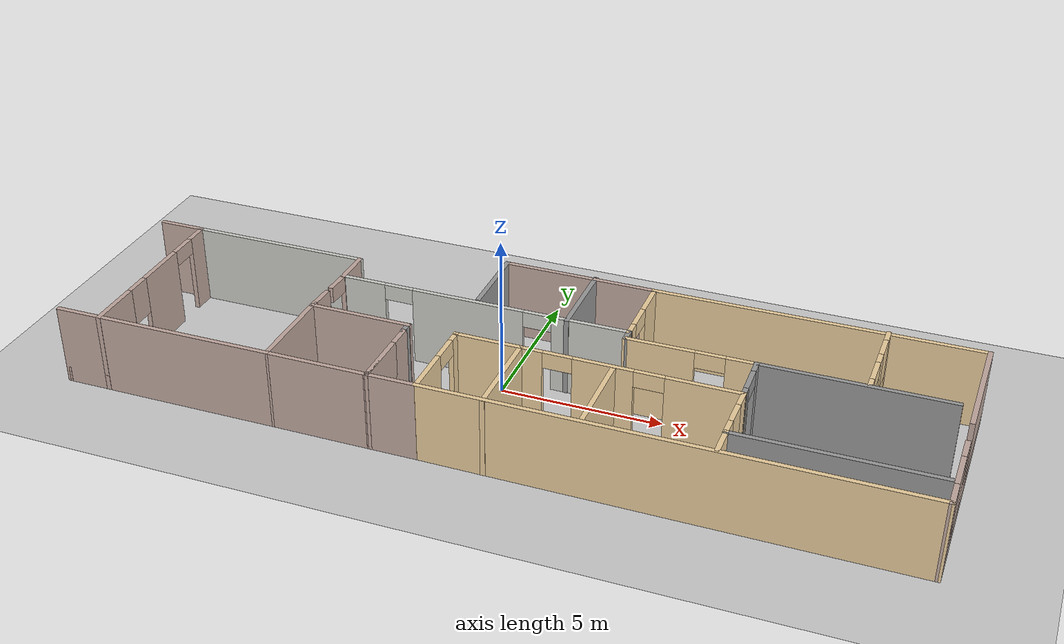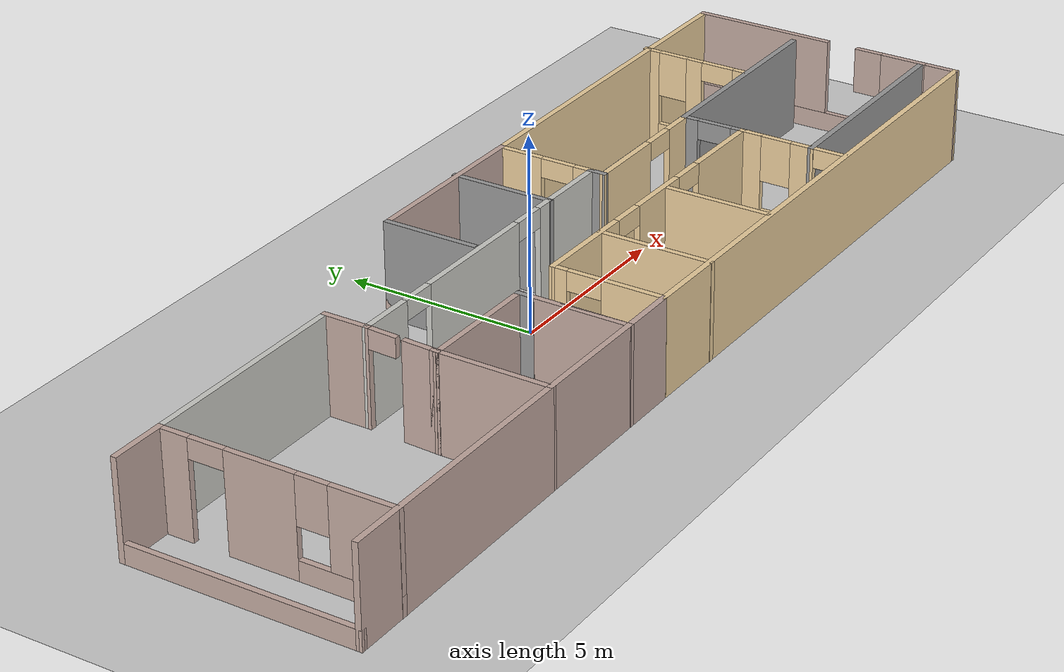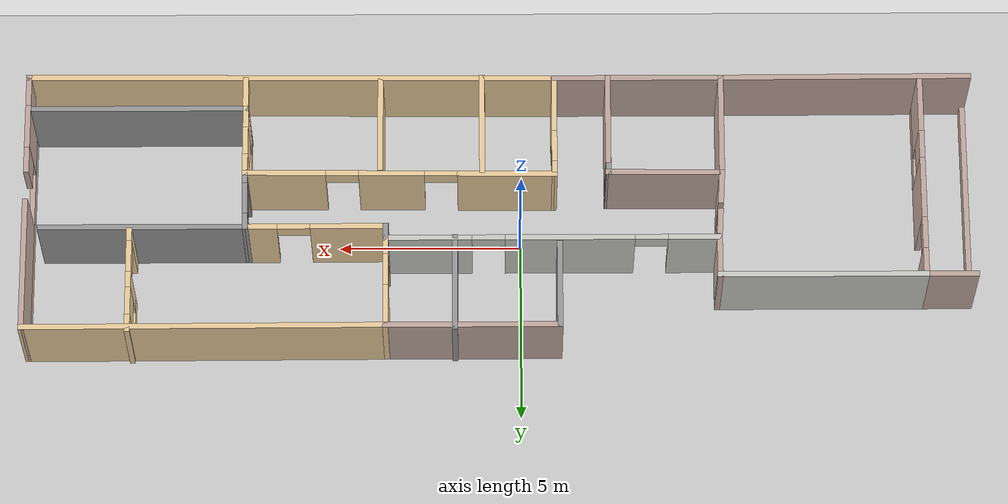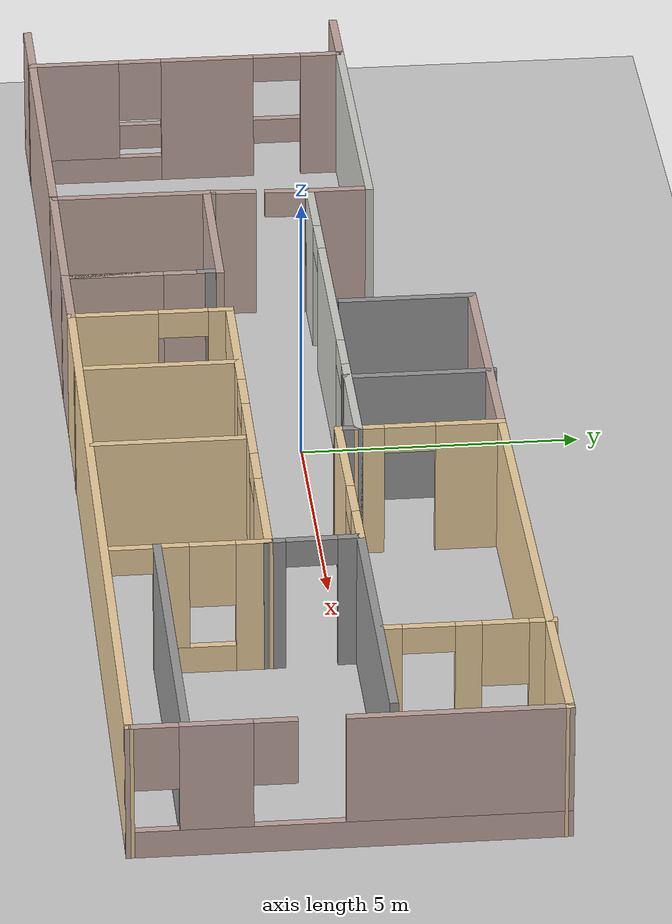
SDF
<sdf version="1.7">
 <world name="default">
  <light name="sun" type="directional">
   <pose>0 0 10 0 -0 0</pose>
   <diffuse>0.8 0.8 0.8 1</diffuse>
   <specular>0.2 0.2 0.2 1</specular>
   <attenuation>
    <range>1000</range>
    <constant>0.9</constant>
    <linear>0.01</linear>
    <quadratic>0.001</quadratic>
   </attenuation>
   <direction>-0.5 0.1 -0.9</direction>
   <spot><inner_angle>0</inner_angle><outer_angle>0</outer_angle><falloff>0</falloff></spot>
  </light>
  <model name="ground_plane">
   <static>1</static>
   <link name="link">
    <collision name="collision">
     <geometry><plane><normal>0 0 1</normal><size>100 100</size></plane></geometry>
     <surface>
      <contact><collide_bitmask>65535</collide_bitmask></contact>
      <friction><ode><mu>100</mu><mu2>50</mu2></ode></friction>
     </surface>
    </collision>
    <visual name="visual">
     <cast_shadows>0</cast_shadows>
     <geometry><plane><normal>0 0 1</normal><size>100 100</size></plane></geometry>
     <material>
      <script><uri>file://media/materials/scripts/gazebo.material</uri><name>Gazebo/Grey</name></script>
     </material>
    </visual>
   </link>
  </model>
  <gravity>0 0 -9.8</gravity>
  <magnetic_field>6e-06 2.3e-05 -4.2e-05</magnetic_field>
  <atmosphere type="adiabatic"/>
  <physics type="ode">
   <max_step_size>0.001</max_step_size>
   <real_time_factor>1</real_time_factor>
   <real_time_update_rate>1000</real_time_update_rate>
  </physics>
  <scene><ambient>0.4 0.4 0.4 1</ambient><background>0.7 0.7 0.7 1</background><shadows>1</shadows></scene>
  <audio><device>default</device></audio>
  <spherical_coordinates>
   <surface_model>EARTH_WGS84</surface_model>
   <latitude_deg>0</latitude_deg>
   <longitude_deg>0</longitude_deg>
   <elevation>0</elevation>
   <heading_deg>0</heading_deg>
  </spherical_coordinates>
  <model name="world">
   <pose>0.585105 -0.429525 0 0 -0 0</pose>
   <link name="Wall_1">
    <collision name="Wall_1_Collision">
     <geometry><box><size>1.25 0.15 2.5</size></box></geometry>
     <pose>0 0 1.25 0 -0 0</pose>
    </collision>
    <visual name="Wall_1_Visual">
     <pose>0 0 1.25 0 -0 0</pose>
     <geometry><box><size>1.25 0.15 2.5</size></box></geometry>
     <material>
      <script><uri>file://media/materials/scripts/gazebo.material</uri><name>Gazebo/Grey</name></script>
      <ambient>0.760784 0.662745 0.627451 1</ambient>
     </material>
     <meta><layer>0</layer></meta>
    </visual>
    <pose>-6.00121 1.63401 0 0 -0 1.5708</pose>
   </link>
   <link name="Wall_11">
    <pose>-2.99508 -2.41136 0 0 -0 -1.57579</pose>
    <visual name="Wall_11_Visual_0">
     <pose>0 0 1.25 0 -0 0</pose>
     <geometry><box><size>2.60696 0.15 2.5</size></box></geometry>
     <material>
      <script><uri>file://media/materials/scripts/gazebo.material</uri><name>Gazebo/Grey</name></script>
      <ambient>0.760784 0.662745 0.627451 1</ambient>
     </material>
     <meta><layer>0</layer></meta>
    </visual>
    <collision name="Wall_11_Collision_0">
     <geometry><box><size>2.60696 0.15 2.5</size></box></geometry>
     <pose>0 0 1.25 0 -0 0</pose>
    </collision>
    <visual name="Wall_11_Visual_1">
     <pose>0.37714 0 1.25 0 -0 0</pose>
     <geometry><box><size>1.85268 0.15 2.5</size></box></geometry>
     <material>
      <script><uri>file://media/materials/scripts/gazebo.material</uri><name>Gazebo/Grey</name></script>
      <ambient>0.760784 0.662745 0.627451 1</ambient>
     </material>
     <meta><layer>0</layer></meta>
    </visual>
    <collision name="Wall_11_Collision_1">
     <geometry><box><size>1.85268 0.15 2.5</size></box></geometry>
     <pose>0.37714 0 1.25 0 -0 0</pose>
    </collision>
   </link>
   <link name="Wall_12">
    <collision name="Wall_12_Collision">
     <geometry><box><size>1.61885 0.15 2.5</size></box></geometry>
     <pose>0 0 1.25 0 -0 0</pose>
    </collision>
    <visual name="Wall_12_Visual">
     <pose>0 0 1.25 0 -0 0</pose>
     <geometry><box><size>1.61885 0.15 2.5</size></box></geometry>
     <material>
      <script><uri>file://media/materials/scripts/gazebo.material</uri><name>Gazebo/Grey</name></script>
      <ambient>0.760784 0.662745 0.627451 1</ambient>
     </material>
     <meta><layer>0</layer></meta>
    </visual>
    <pose>-2.26679 -3.63691 0 0 -0 0.003583</pose>
   </link>
   <link name="Wall_13">
    <pose>-1.51914 -2.20928 0 0 -0 1.5708</pose>
    <visual name="Wall_13_Visual_0">
     <pose>-0.68151 0 1.25 0 -0 0</pose>
     <geometry><box><size>1.63698 0.15 2.5</size></box></geometry>
     <material>
      <script><uri>file://media/materials/scripts/gazebo.material</uri><name>Gazebo/Grey</name></script>
      <ambient>0.921569 0.807843 0.615686 1</ambient>
     </material>
     <meta><layer>0</layer></meta>
    </visual>
    <collision name="Wall_13_Collision_0">
     <geometry><box><size>1.63698 0.15 2.5</size></box></geometry>
     <pose>-0.68151 0 1.25 0 -0 0</pose>
    </collision>
    <visual name="Wall_13_Visual_1">
     <pose>1.26849 0 1.25 0 -0 0</pose>
     <geometry><box><size>0.46302 0.15 2.5</size></box></geometry>
     <material>
      <script><uri>file://media/materials/scripts/gazebo.material</uri><name>Gazebo/Grey</name></script>
      <ambient>0.921569 0.807843 0.615686 1</ambient>
     </material>
     <meta><layer>0</layer></meta>
    </visual>
    <collision name="Wall_13_Collision_1">
     <geometry><box><size>0.46302 0.15 2.5</size></box></geometry>
     <pose>1.26849 0 1.25 0 -0 0</pose>
    </collision>
    <visual name="Wall_13_Visual_2">
     <pose>0.58698 0 2.25 0 -0 0</pose>
     <geometry><box><size>0.9 0.15 0.5</size></box></geometry>
     <material>
      <script><uri>file://media/materials/scripts/gazebo.material</uri><name>Gazebo/Grey</name></script>
      <ambient>0.921569 0.807843 0.615686 1</ambient>
     </material>
     <meta><layer>0</layer></meta>
    </visual>
    <collision name="Wall_13_Collision_2">
     <geometry><box><size>0.9 0.15 0.5</size></box></geometry>
     <pose>0.58698 0 2.25 0 -0 0</pose>
    </collision>
   </link>
   <link name="Wall_14">
    <pose>2.72363 -0.813929 0 0 -0 -0.006988</pose>
    <visual name="Wall_14_Visual_0">
     <pose>-2.94797 0 1.25 0 -0 0</pose>
     <geometry><box><size>2.73982 0.15 2.5</size></box></geometry>
     <material>
      <script><uri>file://media/materials/scripts/gazebo.material</uri><name>Gazebo/Grey</name></script>
      <ambient>0.921569 0.807843 0.615686 1</ambient>
     </material>
     <meta><layer>0</layer></meta>
    </visual>
    <collision name="Wall_14_Collision_0">
     <geometry><box><size>2.73982 0.15 2.5</size></box></geometry>
     <pose>-2.94797 0 1.25 0 -0 0</pose>
    </collision>
    <visual name="Wall_14_Visual_1">
     <pose>0.224347 0 1.25 0 -0 0</pose>
     <geometry><box><size>1.8048 0.15 2.5</size></box></geometry>
     <material>
      <script><uri>file://media/materials/scripts/gazebo.material</uri><name>Gazebo/Grey</name></script>
      <ambient>0.921569 0.807843 0.615686 1</ambient>
     </material>
     <meta><layer>0</layer></meta>
    </visual>
    <collision name="Wall_14_Collision_1">
     <geometry><box><size>1.8048 0.15 2.5</size></box></geometry>
     <pose>0.224347 0 1.25 0 -0 0</pose>
    </collision>
    <visual name="Wall_14_Visual_2">
     <pose>3.17231 0 1.25 0 -0 0</pose>
     <geometry><box><size>2.29113 0.15 2.5</size></box></geometry>
     <material>
      <script><uri>file://media/materials/scripts/gazebo.material</uri><name>Gazebo/Grey</name></script>
      <ambient>0.921569 0.807843 0.615686 1</ambient>
     </material>
     <meta><layer>0</layer></meta>
    </visual>
    <collision name="Wall_14_Collision_2">
     <geometry><box><size>2.29113 0.15 2.5</size></box></geometry>
     <pose>3.17231 0 1.25 0 -0 0</pose>
    </collision>
    <visual name="Wall_14_Visual_3">
     <pose>-1.12806 0 2.25 0 -0 0</pose>
     <geometry><box><size>0.9 0.15 0.5</size></box></geometry>
     <material>
      <script><uri>file://media/materials/scripts/gazebo.material</uri><name>Gazebo/Grey</name></script>
      <ambient>0.921569 0.807843 0.615686 1</ambient>
     </material>
     <meta><layer>0</layer></meta>
    </visual>
    <collision name="Wall_14_Collision_3">
     <geometry><box><size>0.9 0.15 0.5</size></box></geometry>
     <pose>-1.12806 0 2.25 0 -0 0</pose>
    </collision>
    <visual name="Wall_14_Visual_4">
     <pose>1.57675 0 2.25 0 -0 0</pose>
     <geometry><box><size>0.9 0.15 0.5</size></box></geometry>
     <material>
      <script><uri>file://media/materials/scripts/gazebo.material</uri><name>Gazebo/Grey</name></script>
      <ambient>0.921569 0.807843 0.615686 1</ambient>
     </material>
     <meta><layer>0</layer></meta>
    </visual>
    <collision name="Wall_14_Collision_4">
     <geometry><box><size>0.9 0.15 0.5</size></box></geometry>
     <pose>1.57675 0 2.25 0 -0 0</pose>
    </collision>
   </link>
   <link name="Wall_2">
    <collision name="Wall_2_Collision">
     <geometry><box><size>5.75 0.15 2.5</size></box></geometry>
     <pose>0 0 1.25 0 -0 0</pose>
    </collision>
    <visual name="Wall_2_Visual">
     <pose>0 0 1.25 0 -0 0</pose>
     <geometry><box><size>5.75 0.15 2.5</size></box></geometry>
     <material>
      <script><uri>file://media/materials/scripts/gazebo.material</uri><name>Gazebo/CeilingTiled</name></script>
      <ambient>0.760784 0.662745 0.627451 1</ambient>
     </material>
     <meta><layer>0</layer></meta>
    </visual>
    <pose>-8.80121 2.18401 0 0 -0 3.14159</pose>
   </link>
   <link name="Wall_20">
    <pose>-1.45121 1.08401 0 0 -0 0</pose>
    <visual name="Wall_20_Visual_0">
     <pose>-3.88533 0 1.25 0 -0 0</pose>
     <geometry><box><size>1.47935 0.15 2.5</size></box></geometry>
     <material>
      <script><uri>file://media/materials/scripts/gazebo.material</uri><name>Gazebo/CeilingTiled</name></script>
      <ambient>0.760784 0.662745 0.627451 1</ambient>
     </material>
     <meta><layer>0</layer></meta>
    </visual>
    <collision name="Wall_20_Collision_0">
     <geometry><box><size>1.47935 0.15 2.5</size></box></geometry>
     <pose>-3.88533 0 1.25 0 -0 0</pose>
    </collision>
    <visual name="Wall_20_Visual_1">
     <pose>-0.475175 0 1.25 0 -0 0</pose>
     <geometry><box><size>3.54095 0.15 2.5</size></box></geometry>
     <material>
      <script><uri>file://media/materials/scripts/gazebo.material</uri><name>Gazebo/CeilingTiled</name></script>
      <ambient>0.760784 0.662745 0.627451 1</ambient>
     </material>
     <meta><layer>0</layer></meta>
    </visual>
    <collision name="Wall_20_Collision_1">
     <geometry><box><size>3.54095 0.15 2.5</size></box></geometry>
     <pose>-0.475175 0 1.25 0 -0 0</pose>
    </collision>
    <visual name="Wall_20_Visual_2">
     <pose>3.41015 0 1.25 0 -0 0</pose>
     <geometry><box><size>2.4297 0.15 2.5</size></box></geometry>
     <material>
      <script><uri>file://media/materials/scripts/gazebo.material</uri><name>Gazebo/CeilingTiled</name></script>
      <ambient>0.760784 0.662745 0.627451 1</ambient>
     </material>
     <meta><layer>0</layer></meta>
    </visual>
    <collision name="Wall_20_Collision_2">
     <geometry><box><size>2.4297 0.15 2.5</size></box></geometry>
     <pose>3.41015 0 1.25 0 -0 0</pose>
    </collision>
    <visual name="Wall_20_Visual_3">
     <pose>-2.69565 0 2.25 0 -0 0</pose>
     <geometry><box><size>0.9 0.15 0.5</size></box></geometry>
     <material>
      <script><uri>file://media/materials/scripts/gazebo.material</uri><name>Gazebo/CeilingTiled</name></script>
      <ambient>0.760784 0.662745 0.627451 1</ambient>
     </material>
     <meta><layer>0</layer></meta>
    </visual>
    <collision name="Wall_20_Collision_3">
     <geometry><box><size>0.9 0.15 0.5</size></box></geometry>
     <pose>-2.69565 0 2.25 0 -0 0</pose>
    </collision>
    <visual name="Wall_20_Visual_4">
     <pose>1.7453 0 2.25 0 -0 0</pose>
     <geometry><box><size>0.9 0.15 0.5</size></box></geometry>
     <material>
      <script><uri>file://media/materials/scripts/gazebo.material</uri><name>Gazebo/CeilingTiled</name></script>
      <ambient>0.760784 0.662745 0.627451 1</ambient>
     </material>
     <meta><layer>0</layer></meta>
    </visual>
    <collision name="Wall_20_Collision_4">
     <geometry><box><size>0.9 0.15 0.5</size></box></geometry>
     <pose>1.7453 0 2.25 0 -0 0</pose>
    </collision>
   </link>
   <link name="Wall_21">
    <collision name="Wall_21_Collision">
     <geometry><box><size>0.5 0.15 2.5</size></box></geometry>
     <pose>0 0 1.25 0 -0 0</pose>
    </collision>
    <visual name="Wall_21_Visual">
     <pose>0 0 1.25 0 -0 0</pose>
     <geometry><box><size>0.5 0.15 2.5</size></box></geometry>
     <material>
      <script><uri>file://media/materials/scripts/gazebo.material</uri><name>Gazebo/Grey</name></script>
      <ambient>1 1 1 1</ambient>
     </material>
     <meta><layer>0</layer></meta>
    </visual>
    <pose>3.09879 0.909009 0 0 -0 -1.5708</pose>
   </link>
   <link name="Wall_22">
    <pose>5.01654 0.740621 0 0 -0 0.003448</pose>
    <visual name="Wall_22_Visual_0">
     <pose>-0.924052 0 1.25 0 -0 0</pose>
     <geometry><box><size>2.13742 0.15 2.5</size></box></geometry>
     <material>
      <script><uri>file://media/materials/scripts/gazebo.material</uri><name>Gazebo/Grey</name></script>
      <ambient>0.921569 0.807843 0.615686 1</ambient>
     </material>
     <meta><layer>0</layer></meta>
    </visual>
    <collision name="Wall_22_Collision_0">
     <geometry><box><size>2.13742 0.15 2.5</size></box></geometry>
     <pose>-0.924052 0 1.25 0 -0 0</pose>
    </collision>
    <visual name="Wall_22_Visual_1">
     <pose>1.51871 0 1.25 0 -0 0</pose>
     <geometry><box><size>0.948104 0.15 2.5</size></box></geometry>
     <material>
      <script><uri>file://media/materials/scripts/gazebo.material</uri><name>Gazebo/Grey</name></script>
      <ambient>0.921569 0.807843 0.615686 1</ambient>
     </material>
     <meta><layer>0</layer></meta>
    </visual>
    <collision name="Wall_22_Collision_1">
     <geometry><box><size>0.948104 0.15 2.5</size></box></geometry>
     <pose>1.51871 0 1.25 0 -0 0</pose>
    </collision>
    <visual name="Wall_22_Visual_2">
     <pose>0.594657 0 2.25 0 -0 0</pose>
     <geometry><box><size>0.9 0.15 0.5</size></box></geometry>
     <material>
      <script><uri>file://media/materials/scripts/gazebo.material</uri><name>Gazebo/Grey</name></script>
      <ambient>0.921569 0.807843 0.615686 1</ambient>
     </material>
     <meta><layer>0</layer></meta>
    </visual>
    <collision name="Wall_22_Collision_2">
     <geometry><box><size>0.9 0.15 0.5</size></box></geometry>
     <pose>0.594657 0 2.25 0 -0 0</pose>
    </collision>
   </link>
   <link name="Wall_23">
    <pose>6.95035 -0.054785 0 0 -0 -1.55078</pose>
    <visual name="Wall_23_Visual_0">
     <pose>-0.640936 0 1.25 0 -0 0</pose>
     <geometry><box><size>0.472489 0.15 2.5</size></box></geometry>
     <material>
      <script><uri>file://media/materials/scripts/gazebo.material</uri><name>Gazebo/Grey</name></script>
      <ambient>1 1 1 1</ambient>
     </material>
     <meta><layer>0</layer></meta>
    </visual>
    <collision name="Wall_23_Collision_0">
     <geometry><box><size>0.472489 0.15 2.5</size></box></geometry>
     <pose>-0.640936 0 1.25 0 -0 0</pose>
    </collision>
    <visual name="Wall_23_Visual_1">
     <pose>0.686244 0 1.25 0 -0 0</pose>
     <geometry><box><size>0.381871 0.15 2.5</size></box></geometry>
     <material>
      <script><uri>file://media/materials/scripts/gazebo.material</uri><name>Gazebo/Grey</name></script>
      <ambient>1 1 1 1</ambient>
     </material>
     <meta><layer>0</layer></meta>
    </visual>
    <collision name="Wall_23_Collision_1">
     <geometry><box><size>0.381871 0.15 2.5</size></box></geometry>
     <pose>0.686244 0 1.25 0 -0 0</pose>
    </collision>
    <visual name="Wall_23_Visual_2">
     <pose>0.045309 0 2.25 0 -0 0</pose>
     <geometry><box><size>0.9 0.15 0.5</size></box></geometry>
     <material>
      <script><uri>file://media/materials/scripts/gazebo.material</uri><name>Gazebo/Grey</name></script>
      <ambient>1 1 1 1</ambient>
     </material>
     <meta><layer>0</layer></meta>
    </visual>
    <collision name="Wall_23_Collision_2">
     <geometry><box><size>0.9 0.15 0.5</size></box></geometry>
     <pose>0.045309 0 2.25 0 -0 0</pose>
    </collision>
   </link>
   <link name="Wall_26">
    <collision name="Wall_26_Collision">
     <geometry><box><size>3.25 0.15 2.5</size></box></geometry>
     <pose>0 0 1.25 0 -0 0</pose>
    </collision>
    <visual name="Wall_26_Visual">
     <pose>0 0 1.25 0 -0 0</pose>
     <geometry><box><size>3.25 0.15 2.5</size></box></geometry>
     <material>
      <script><uri>file://media/materials/scripts/gazebo.material</uri><name>Gazebo/Grey</name></script>
      <ambient>0.760784 0.662745 0.627451 1</ambient>
     </material>
     <meta><layer>0</layer></meta>
    </visual>
    <pose>-4.55121 -3.63954 0 0 -0 0</pose>
   </link>
   <link name="Wall_28">
    <collision name="Wall_28_Collision">
     <geometry><box><size>14.6337 0.15 2.5</size></box></geometry>
     <pose>0 0 1.25 0 -0 0</pose>
    </collision>
    <visual name="Wall_28_Visual">
     <pose>0 0 1.25 0 -0 0</pose>
     <geometry><box><size>14.6337 0.15 2.5</size></box></geometry>
     <material>
      <script><uri>file://media/materials/scripts/gazebo.material</uri><name>Gazebo/Grey</name></script>
      <ambient>0.921569 0.807843 0.615686 1</ambient>
     </material>
     <meta><layer>0</layer></meta>
    </visual>
    <pose>5.70939 -3.66734 0 0 -0 -0.004566</pose>
   </link>
   <link name="Wall_29">
    <pose>12.9512 -0.025403 0 0 -0 1.5708</pose>
    <visual name="Wall_29_Visual_0">
     <pose>-3.69753 0 1.25 0 -0 0</pose>
     <geometry><box><size>0.104934 0.15 2.5</size></box></geometry>
     <material>
      <script><uri>file://media/materials/scripts/gazebo.material</uri><name>Gazebo/Grey</name></script>
      <ambient>0.760784 0.662745 0.627451 1</ambient>
     </material>
     <meta><layer>0</layer></meta>
    </visual>
    <collision name="Wall_29_Collision_0">
     <geometry><box><size>0.104934 0.15 2.5</size></box></geometry>
     <pose>-3.69753 0 1.25 0 -0 0</pose>
    </collision>
    <visual name="Wall_29_Visual_1">
     <pose>0.052467 0 0.25 0 -0 0</pose>
     <geometry><box><size>7.39507 0.15 0.5</size></box></geometry>
     <material>
      <script><uri>file://media/materials/scripts/gazebo.material</uri><name>Gazebo/Grey</name></script>
      <ambient>0.760784 0.662745 0.627451 1</ambient>
     </material>
     <meta><layer>0</layer></meta>
    </visual>
    <collision name="Wall_29_Collision_1">
     <geometry><box><size>7.39507 0.15 0.5</size></box></geometry>
     <pose>0.052467 0 0.25 0 -0 0</pose>
    </collision>
    <visual name="Wall_29_Visual_2">
     <pose>-2.22551 0 1.5 0 -0 0</pose>
     <geometry><box><size>1.2391 0.15 2</size></box></geometry>
     <material>
      <script><uri>file://media/materials/scripts/gazebo.material</uri><name>Gazebo/Grey</name></script>
      <ambient>0.760784 0.662745 0.627451 1</ambient>
     </material>
     <meta><layer>0</layer></meta>
    </visual>
    <collision name="Wall_29_Collision_2">
     <geometry><box><size>1.2391 0.15 2</size></box></geometry>
     <pose>-2.22551 0 1.5 0 -0 0</pose>
    </collision>
    <visual name="Wall_29_Visual_3">
     <pose>1.84442 0 1.5 0 -0 0</pose>
     <geometry><box><size>3.81116 0.15 2</size></box></geometry>
     <material>
      <script><uri>file://media/materials/scripts/gazebo.material</uri><name>Gazebo/Grey</name></script>
      <ambient>0.760784 0.662745 0.627451 1</ambient>
     </material>
     <meta><layer>0</layer></meta>
    </visual>
    <collision name="Wall_29_Collision_3">
     <geometry><box><size>3.81116 0.15 2</size></box></geometry>
     <pose>1.84442 0 1.5 0 -0 0</pose>
    </collision>
    <visual name="Wall_29_Visual_4">
     <pose>-3.24507 0 1.9 0 -0 0</pose>
     <geometry><box><size>0.8 0.15 1.2</size></box></geometry>
     <material>
      <script><uri>file://media/materials/scripts/gazebo.material</uri><name>Gazebo/Grey</name></script>
      <ambient>0.760784 0.662745 0.627451 1</ambient>
     </material>
     <meta><layer>0</layer></meta>
    </visual>
    <collision name="Wall_29_Collision_4">
     <geometry><box><size>0.8 0.15 1.2</size></box></geometry>
     <pose>-3.24507 0 1.9 0 -0 0</pose>
    </collision>
    <visual name="Wall_29_Visual_5">
     <pose>-1.23356 0 1.9 0 -0 0</pose>
     <geometry><box><size>0.744806 0.15 1.2</size></box></geometry>
     <material>
      <script><uri>file://media/materials/scripts/gazebo.material</uri><name>Gazebo/Grey</name></script>
      <ambient>0.760784 0.662745 0.627451 1</ambient>
     </material>
     <meta><layer>0</layer></meta>
    </visual>
    <collision name="Wall_29_Collision_5">
     <geometry><box><size>0.744806 0.15 1.2</size></box></geometry>
     <pose>-1.23356 0 1.9 0 -0 0</pose>
    </collision>
   </link>
   <link name="Wall_3">
    <collision name="Wall_3_Collision">
     <geometry><box><size>1.5 0.15 2.5</size></box></geometry>
     <pose>0 0 1.25 0 -0 0</pose>
    </collision>
    <visual name="Wall_3_Visual">
     <pose>0 0 1.25 0 -0 0</pose>
     <geometry><box><size>1.5 0.15 2.5</size></box></geometry>
     <material>
      <script><uri>file://media/materials/scripts/gazebo.material</uri><name>Gazebo/Grey</name></script>
      <ambient>0.760784 0.662745 0.627451 1</ambient>
     </material>
     <meta><layer>0</layer></meta>
    </visual>
    <pose>-12.2762 2.18401 0 0 -0 3.14159</pose>
   </link>
   <link name="Wall_30">
    <collision name="Wall_30_Collision">
     <geometry><box><size>10.0067 0.15 2.5</size></box></geometry>
     <pose>0 0 1.25 0 -0 0</pose>
    </collision>
    <visual name="Wall_30_Visual">
     <pose>0 0 1.25 0 -0 0</pose>
     <geometry><box><size>10.0067 0.15 2.5</size></box></geometry>
     <material>
      <script><uri>file://media/materials/scripts/gazebo.material</uri><name>Gazebo/Grey</name></script>
      <ambient>0.921569 0.807843 0.615686 1</ambient>
     </material>
     <meta><layer>0</layer></meta>
    </visual>
    <pose>8.02282 3.63131 0 0 -0 -3.13788</pose>
   </link>
   <link name="Wall_31">
    <pose>3.09664 2.34851 0 0 -0 -1.56909</pose>
    <visual name="Wall_31_Visual_0">
     <pose>-0.717025 0 1.25 0 -0 0</pose>
     <geometry><box><size>1.24545 0.15 2.5</size></box></geometry>
     <material>
      <script><uri>file://media/materials/scripts/gazebo.material</uri><name>Gazebo/Grey</name></script>
      <ambient>0.921569 0.807843 0.615686 1</ambient>
     </material>
     <meta><layer>0</layer></meta>
    </visual>
    <collision name="Wall_31_Collision_0">
     <geometry><box><size>1.24545 0.15 2.5</size></box></geometry>
     <pose>-0.717025 0 1.25 0 -0 0</pose>
    </collision>
    <visual name="Wall_31_Visual_1">
     <pose>1.07272 0 1.25 0 -0 0</pose>
     <geometry><box><size>0.53405 0.15 2.5</size></box></geometry>
     <material>
      <script><uri>file://media/materials/scripts/gazebo.material</uri><name>Gazebo/Grey</name></script>
      <ambient>0.921569 0.807843 0.615686 1</ambient>
     </material>
     <meta><layer>0</layer></meta>
    </visual>
    <collision name="Wall_31_Collision_1">
     <geometry><box><size>0.53405 0.15 2.5</size></box></geometry>
     <pose>1.07272 0 1.25 0 -0 0</pose>
    </collision>
    <visual name="Wall_31_Visual_2">
     <pose>0.3557 0 2.25 0 -0 0</pose>
     <geometry><box><size>0.9 0.15 0.5</size></box></geometry>
     <material>
      <script><uri>file://media/materials/scripts/gazebo.material</uri><name>Gazebo/Grey</name></script>
      <ambient>0.921569 0.807843 0.615686 1</ambient>
     </material>
     <meta><layer>0</layer></meta>
    </visual>
    <collision name="Wall_31_Collision_2">
     <geometry><box><size>0.9 0.15 0.5</size></box></geometry>
     <pose>0.3557 0 2.25 0 -0 0</pose>
    </collision>
   </link>
   <link name="Wall_33">
    <collision name="Wall_33_Collision">
     <geometry><box><size>5.75 0.15 2.5</size></box></geometry>
     <pose>0 0 1.25 0 -0 0</pose>
    </collision>
    <visual name="Wall_33_Visual">
     <pose>0 0 1.25 0 -0 0</pose>
     <geometry><box><size>5.75 0.15 2.5</size></box></geometry>
     <material>
      <script><uri>file://media/materials/scripts/gazebo.material</uri><name>Gazebo/Grey</name></script>
      <ambient>1 1 1 1</ambient>
     </material>
     <meta><layer>0</layer></meta>
    </visual>
    <pose>9.72106 0.747234 0 0 -0 0</pose>
   </link>
   <link name="Wall_35">
    <pose>10.0842 2.27575 0 0 -0 -1.5708</pose>
    <visual name="Wall_35_Visual_0">
     <pose>-1.25796 0 1.25 0 -0 0</pose>
     <geometry><box><size>0.484079 0.15 2.5</size></box></geometry>
     <material>
      <script><uri>file://media/materials/scripts/gazebo.material</uri><name>Gazebo/Grey</name></script>
      <ambient>0.921569 0.807843 0.615686 1</ambient>
     </material>
     <meta><layer>0</layer></meta>
    </visual>
    <collision name="Wall_35_Collision_0">
     <geometry><box><size>0.484079 0.15 2.5</size></box></geometry>
     <pose>-1.25796 0 1.25 0 -0 0</pose>
    </collision>
    <visual name="Wall_35_Visual_1">
     <pose>1.31874 0 1.25 0 -0 0</pose>
     <geometry><box><size>0.362511 0.15 2.5</size></box></geometry>
     <material>
      <script><uri>file://media/materials/scripts/gazebo.material</uri><name>Gazebo/Grey</name></script>
      <ambient>0.921569 0.807843 0.615686 1</ambient>
     </material>
     <meta><layer>0</layer></meta>
    </visual>
    <collision name="Wall_35_Collision_1">
     <geometry><box><size>0.362511 0.15 2.5</size></box></geometry>
     <pose>1.31874 0 1.25 0 -0 0</pose>
    </collision>
    <visual name="Wall_35_Visual_2">
     <pose>-0.389216 0 0.25 0 -0 0</pose>
     <geometry><box><size>1.25341 0.15 0.5</size></box></geometry>
     <material>
      <script><uri>file://media/materials/scripts/gazebo.material</uri><name>Gazebo/Grey</name></script>
      <ambient>0.921569 0.807843 0.615686 1</ambient>
     </material>
     <meta><layer>0</layer></meta>
    </visual>
    <collision name="Wall_35_Collision_2">
     <geometry><box><size>1.25341 0.15 0.5</size></box></geometry>
     <pose>-0.389216 0 0.25 0 -0 0</pose>
    </collision>
    <visual name="Wall_35_Visual_3">
     <pose>0.010784 0 1.5 0 -0 0</pose>
     <geometry><box><size>0.45341 0.15 2</size></box></geometry>
     <material>
      <script><uri>file://media/materials/scripts/gazebo.material</uri><name>Gazebo/Grey</name></script>
      <ambient>0.921569 0.807843 0.615686 1</ambient>
     </material>
     <meta><layer>0</layer></meta>
    </visual>
    <collision name="Wall_35_Collision_3">
     <geometry><box><size>0.45341 0.15 2</size></box></geometry>
     <pose>0.010784 0 1.5 0 -0 0</pose>
    </collision>
    <visual name="Wall_35_Visual_4">
     <pose>-0.615921 0 1.9 0 -0 0</pose>
     <geometry><box><size>0.8 0.15 1.2</size></box></geometry>
     <material>
      <script><uri>file://media/materials/scripts/gazebo.material</uri><name>Gazebo/Grey</name></script>
      <ambient>0.921569 0.807843 0.615686 1</ambient>
     </material>
     <meta><layer>0</layer></meta>
    </visual>
    <collision name="Wall_35_Collision_4">
     <geometry><box><size>0.8 0.15 1.2</size></box></geometry>
     <pose>-0.615921 0 1.9 0 -0 0</pose>
    </collision>
    <visual name="Wall_35_Visual_5">
     <pose>0.687489 0 2.25 0 -0 0</pose>
     <geometry><box><size>0.9 0.15 0.5</size></box></geometry>
     <material>
      <script><uri>file://media/materials/scripts/gazebo.material</uri><name>Gazebo/Grey</name></script>
      <ambient>0.921569 0.807843 0.615686 1</ambient>
     </material>
     <meta><layer>0</layer></meta>
    </visual>
    <collision name="Wall_35_Collision_5">
     <geometry><box><size>0.9 0.15 0.5</size></box></geometry>
     <pose>0.687489 0 2.25 0 -0 0</pose>
    </collision>
   </link>
   <link name="Wall_37">
    <collision name="Wall_37_Collision">
     <geometry><box><size>2.75 0.15 2.5</size></box></geometry>
     <pose>0 0 1.25 0 -0 0</pose>
    </collision>
    <visual name="Wall_37_Visual">
     <pose>0 0 1.25 0 -0 0</pose>
     <geometry><box><size>2.75 0.15 2.5</size></box></geometry>
     <material>
      <script><uri>file://media/materials/scripts/gazebo.material</uri><name>Gazebo/Grey</name></script>
      <ambient>0.921569 0.807843 0.615686 1</ambient>
     </material>
     <meta><layer>0</layer></meta>
    </visual>
    <pose>3.26131 -2.27811 0 0 -0 -1.5708</pose>
   </link>
   <link name="Wall_39">
    <pose>6.96357 -1.80762 0 0 -0 -1.57377</pose>
    <visual name="Wall_39_Visual_0">
     <pose>-0.712359 0 1.25 0 -0 0</pose>
     <geometry><box><size>0.627868 0.15 2.5</size></box></geometry>
     <material>
      <script><uri>file://media/materials/scripts/gazebo.material</uri><name>Gazebo/Grey</name></script>
      <ambient>0.921569 0.807843 0.615686 1</ambient>
     </material>
     <meta><layer>0</layer></meta>
    </visual>
    <collision name="Wall_39_Collision_0">
     <geometry><box><size>0.627868 0.15 2.5</size></box></geometry>
     <pose>-0.712359 0 1.25 0 -0 0</pose>
    </collision>
    <visual name="Wall_39_Visual_1">
     <pose>0.313934 0 0.25 0 -0 0</pose>
     <geometry><box><size>1.42472 0.15 0.5</size></box></geometry>
     <material>
      <script><uri>file://media/materials/scripts/gazebo.material</uri><name>Gazebo/Grey</name></script>
      <ambient>0.921569 0.807843 0.615686 1</ambient>
     </material>
     <meta><layer>0</layer></meta>
    </visual>
    <collision name="Wall_39_Collision_1">
     <geometry><box><size>1.42472 0.15 0.5</size></box></geometry>
     <pose>0.313934 0 0.25 0 -0 0</pose>
    </collision>
    <visual name="Wall_39_Visual_2">
     <pose>0.713934 0 1.5 0 -0 0</pose>
     <geometry><box><size>0.624718 0.15 2</size></box></geometry>
     <material>
      <script><uri>file://media/materials/scripts/gazebo.material</uri><name>Gazebo/Grey</name></script>
      <ambient>0.921569 0.807843 0.615686 1</ambient>
     </material>
     <meta><layer>0</layer></meta>
    </visual>
    <collision name="Wall_39_Collision_2">
     <geometry><box><size>0.624718 0.15 2</size></box></geometry>
     <pose>0.713934 0 1.5 0 -0 0</pose>
    </collision>
    <visual name="Wall_39_Visual_3">
     <pose>0.001575 0 1.9 0 -0 0</pose>
     <geometry><box><size>0.8 0.15 1.2</size></box></geometry>
     <material>
      <script><uri>file://media/materials/scripts/gazebo.material</uri><name>Gazebo/Grey</name></script>
      <ambient>0.921569 0.807843 0.615686 1</ambient>
     </material>
     <meta><layer>0</layer></meta>
    </visual>
    <collision name="Wall_39_Collision_3">
     <geometry><box><size>0.8 0.15 1.2</size></box></geometry>
     <pose>0.001575 0 1.9 0 -0 0</pose>
    </collision>
   </link>
   <link name="Wall_4">
    <pose>-12.9512 -0.740991 0 0 -0 -1.5708</pose>
    <visual name="Wall_4_Visual_0">
     <pose>0 0 0.25 0 -0 0</pose>
     <geometry><box><size>6 0.15 0.5</size></box></geometry>
     <material>
      <script><uri>file://media/materials/scripts/gazebo.material</uri><name>Gazebo/Grey</name></script>
      <ambient>0.760784 0.662745 0.627451 1</ambient>
     </material>
     <meta><layer>0</layer></meta>
    </visual>
    <collision name="Wall_4_Collision_0">
     <geometry><box><size>6 0.15 0.5</size></box></geometry>
     <pose>0 0 0.25 0 -0 0</pose>
    </collision>
   </link>
   <link name="Wall_40">
    <collision name="Wall_40_Collision">
     <geometry><box><size>5.98805 0.15 2.5</size></box></geometry>
     <pose>0 0 1.25 0 -0 0</pose>
    </collision>
    <visual name="Wall_40_Visual">
     <pose>0 0 1.25 0 -0 0</pose>
     <geometry><box><size>5.98805 0.15 2.5</size></box></geometry>
     <material>
      <script><uri>file://media/materials/scripts/gazebo.material</uri><name>Gazebo/Grey</name></script>
      <ambient>1 1 1 1</ambient>
     </material>
     <meta><layer>0</layer></meta>
    </visual>
    <pose>9.87977 -2.75843 0 0 -0 0</pose>
   </link>
   <link name="Wall_42">
    <pose>6.97397 -3.18343 0 0 -0 -1.5708</pose>
    <visual name="Wall_42_Visual_0">
     <pose>-0.426925 0 1.25 0 -0 0</pose>
     <geometry><box><size>0.146151 0.15 2.5</size></box></geometry>
     <material>
      <script><uri>file://media/materials/scripts/gazebo.material</uri><name>Gazebo/Grey</name></script>
      <ambient>0.921569 0.807843 0.615686 1</ambient>
     </material>
     <meta><layer>0</layer></meta>
    </visual>
    <collision name="Wall_42_Collision_0">
     <geometry><box><size>0.146151 0.15 2.5</size></box></geometry>
     <pose>-0.426925 0 1.25 0 -0 0</pose>
    </collision>
    <visual name="Wall_42_Visual_1">
     <pose>0.073075 0 2.25 0 -0 0</pose>
     <geometry><box><size>0.853849 0.15 0.5</size></box></geometry>
     <material>
      <script><uri>file://media/materials/scripts/gazebo.material</uri><name>Gazebo/Grey</name></script>
      <ambient>0.921569 0.807843 0.615686 1</ambient>
     </material>
     <meta><layer>0</layer></meta>
    </visual>
    <collision name="Wall_42_Collision_1">
     <geometry><box><size>0.853849 0.15 0.5</size></box></geometry>
     <pose>0.073075 0 2.25 0 -0 0</pose>
    </collision>
   </link>
   <link name="Wall_44">
    <pose>-11.6012 -0.740991 0 0 -0 -1.5708</pose>
    <visual name="Wall_44_Visual_0">
     <pose>-2.58372 0 1.25 0 -0 0</pose>
     <geometry><box><size>0.832558 0.15 2.5</size></box></geometry>
     <material>
      <script><uri>file://media/materials/scripts/gazebo.material</uri><name>Gazebo/Grey</name></script>
      <ambient>0.760784 0.662745 0.627451 1</ambient>
     </material>
     <meta><layer>0</layer></meta>
    </visual>
    <collision name="Wall_44_Collision_0">
     <geometry><box><size>0.832558 0.15 2.5</size></box></geometry>
     <pose>-2.58372 0 1.25 0 -0 0</pose>
    </collision>
    <visual name="Wall_44_Visual_1">
     <pose>-0.389033 0 1.25 0 -0 0</pose>
     <geometry><box><size>1.75682 0.15 2.5</size></box></geometry>
     <material>
      <script><uri>file://media/materials/scripts/gazebo.material</uri><name>Gazebo/Grey</name></script>
      <ambient>0.760784 0.662745 0.627451 1</ambient>
     </material>
     <meta><layer>0</layer></meta>
    </visual>
    <collision name="Wall_44_Collision_1">
     <geometry><box><size>1.75682 0.15 2.5</size></box></geometry>
     <pose>-0.389033 0 1.25 0 -0 0</pose>
    </collision>
    <visual name="Wall_44_Visual_2">
     <pose>1.74469 0 0.25 0 -0 0</pose>
     <geometry><box><size>2.51062 0.15 0.5</size></box></geometry>
     <material>
      <script><uri>file://media/materials/scripts/gazebo.material</uri><name>Gazebo/Grey</name></script>
      <ambient>0.760784 0.662745 0.627451 1</ambient>
     </material>
     <meta><layer>0</layer></meta>
    </visual>
    <collision name="Wall_44_Collision_2">
     <geometry><box><size>2.51062 0.15 0.5</size></box></geometry>
     <pose>1.74469 0 0.25 0 -0 0</pose>
    </collision>
    <visual name="Wall_44_Visual_3">
     <pose>2.14469 0 1.5 0 -0 0</pose>
     <geometry><box><size>1.71062 0.15 2</size></box></geometry>
     <material>
      <script><uri>file://media/materials/scripts/gazebo.material</uri><name>Gazebo/Grey</name></script>
      <ambient>0.760784 0.662745 0.627451 1</ambient>
     </material>
     <meta><layer>0</layer></meta>
    </visual>
    <collision name="Wall_44_Collision_3">
     <geometry><box><size>1.71062 0.15 2</size></box></geometry>
     <pose>2.14469 0 1.5 0 -0 0</pose>
    </collision>
    <visual name="Wall_44_Visual_4">
     <pose>0.889377 0 1.9 0 -0 0</pose>
     <geometry><box><size>0.8 0.15 1.2</size></box></geometry>
     <material>
      <script><uri>file://media/materials/scripts/gazebo.material</uri><name>Gazebo/Grey</name></script>
      <ambient>0.760784 0.662745 0.627451 1</ambient>
     </material>
     <meta><layer>0</layer></meta>
    </visual>
    <collision name="Wall_44_Collision_4">
     <geometry><box><size>0.8 0.15 1.2</size></box></geometry>
     <pose>0.889377 0 1.9 0 -0 0</pose>
    </collision>
    <visual name="Wall_44_Visual_5">
     <pose>-1.71744 0 2.25 0 -0 0</pose>
     <geometry><box><size>0.9 0.15 0.5</size></box></geometry>
     <material>
      <script><uri>file://media/materials/scripts/gazebo.material</uri><name>Gazebo/Grey</name></script>
      <ambient>0.760784 0.662745 0.627451 1</ambient>
     </material>
     <meta><layer>0</layer></meta>
    </visual>
    <collision name="Wall_44_Collision_5">
     <geometry><box><size>0.9 0.15 0.5</size></box></geometry>
     <pose>-1.71744 0 2.25 0 -0 0</pose>
    </collision>
   </link>
   <link name="Wall_46">
    <pose>-6.05121 0.134009 0 0 -0 -1.62338</pose>
    <visual name="Wall_46_Visual_0">
     <pose>-0.945201 0 1.25 0 -0 0</pose>
     <geometry><box><size>0.162228 0.15 2.5</size></box></geometry>
     <material>
      <script><uri>file://media/materials/scripts/gazebo.material</uri><name>Gazebo/Grey</name></script>
      <ambient>0.760784 0.662745 0.627451 1</ambient>
     </material>
     <meta><layer>0</layer></meta>
    </visual>
    <collision name="Wall_46_Collision_0">
     <geometry><box><size>0.162228 0.15 2.5</size></box></geometry>
     <pose>-0.945201 0 1.25 0 -0 0</pose>
    </collision>
    <visual name="Wall_46_Visual_1">
     <pose>0.531114 0 1.25 0 -0 0</pose>
     <geometry><box><size>0.990402 0.15 2.5</size></box></geometry>
     <material>
      <script><uri>file://media/materials/scripts/gazebo.material</uri><name>Gazebo/Grey</name></script>
      <ambient>0.760784 0.662745 0.627451 1</ambient>
     </material>
     <meta><layer>0</layer></meta>
    </visual>
    <collision name="Wall_46_Collision_1">
     <geometry><box><size>0.990402 0.15 2.5</size></box></geometry>
     <pose>0.531114 0 1.25 0 -0 0</pose>
    </collision>
    <visual name="Wall_46_Visual_2">
     <pose>0.903611 0 1.25 0 -0 0</pose>
     <geometry><box><size>0.245408 0.15 2.5</size></box></geometry>
     <material>
      <script><uri>file://media/materials/scripts/gazebo.material</uri><name>Gazebo/Grey</name></script>
      <ambient>0.760784 0.662745 0.627451 1</ambient>
     </material>
     <meta><layer>0</layer></meta>
    </visual>
    <collision name="Wall_46_Collision_2">
     <geometry><box><size>0.245408 0.15 2.5</size></box></geometry>
     <pose>0.903611 0 1.25 0 -0 0</pose>
    </collision>
    <visual name="Wall_46_Visual_3">
     <pose>-0.49159 0 2.25 0 -0 0</pose>
     <geometry><box><size>0.744993 0.15 0.5</size></box></geometry>
     <material>
      <script><uri>file://media/materials/scripts/gazebo.material</uri><name>Gazebo/Grey</name></script>
      <ambient>0.760784 0.662745 0.627451 1</ambient>
     </material>
     <meta><layer>0</layer></meta>
    </visual>
    <collision name="Wall_46_Collision_3">
     <geometry><box><size>0.744993 0.15 0.5</size></box></geometry>
     <pose>-0.49159 0 2.25 0 -0 0</pose>
    </collision>
   </link>
   <link name="Wall_48">
    <collision name="Wall_48_Collision">
     <geometry><box><size>3 0.15 2.5</size></box></geometry>
     <pose>0 0 1.25 0 -0 0</pose>
    </collision>
    <visual name="Wall_48_Visual">
     <pose>0 0 1.25 0 -0 0</pose>
     <geometry><box><size>3 0.15 2.5</size></box></geometry>
     <material>
      <script><uri>file://media/materials/scripts/gazebo.material</uri><name>Gazebo/Grey</name></script>
      <ambient>0.921569 0.807843 0.615686 1</ambient>
     </material>
     <meta><layer>0</layer></meta>
    </visual>
    <pose>0.468179 -2.22755 0 0 -0 -1.5708</pose>
   </link>
   <link name="Wall_5">
    <collision name="Wall_5_Collision">
     <geometry><box><size>6.98683 0.15 2.5</size></box></geometry>
     <pose>0 0 1.25 0 -0 0</pose>
    </collision>
    <visual name="Wall_5_Visual">
     <pose>0 0 1.25 0 -0 0</pose>
     <geometry><box><size>6.98683 0.15 2.5</size></box></geometry>
     <material>
      <script><uri>file://media/materials/scripts/gazebo.material</uri><name>Gazebo/Grey</name></script>
      <ambient>0.760784 0.662745 0.627451 1</ambient>
     </material>
     <meta><layer>0</layer></meta>
    </visual>
    <pose>-9.53282 -3.65277 0 0 -0 0.003869</pose>
   </link>
   <link name="Wall_50">
    <collision name="Wall_50_Collision">
     <geometry><box><size>2.5 0.15 2.5</size></box></geometry>
     <pose>0 0 1.25 0 -0 0</pose>
    </collision>
    <visual name="Wall_50_Visual">
     <pose>0 0 1.25 0 -0 0</pose>
     <geometry><box><size>2.5 0.15 2.5</size></box></geometry>
     <material>
      <script><uri>file://media/materials/scripts/gazebo.material</uri><name>Gazebo/Grey</name></script>
      <ambient>1 1 1 1</ambient>
     </material>
     <meta><layer>0</layer></meta>
    </visual>
    <pose>-1.64239 2.43802 0 0 -0 1.5708</pose>
   </link>
   <link name="Wall_53">
    <collision name="Wall_53_Collision">
     <geometry><box><size>4.88688 0.15 2.5</size></box></geometry>
     <pose>0 0 1.25 0 -0 0</pose>
    </collision>
    <visual name="Wall_53_Visual">
     <pose>0 0 1.25 0 -0 0</pose>
     <geometry><box><size>4.88688 0.15 2.5</size></box></geometry>
     <material>
      <script><uri>file://media/materials/scripts/gazebo.material</uri><name>Gazebo/Grey</name></script>
      <ambient>0.760784 0.662745 0.627451 1</ambient>
     </material>
     <meta><layer>0</layer></meta>
    </visual>
    <pose>0.726047 3.61302 0 0 -0 3.14159</pose>
   </link>
   <link name="Wall_55">
    <collision name="Wall_55_Collision">
     <geometry><box><size>2.75 0.15 2.5</size></box></geometry>
     <pose>0 0 1.25 0 -0 0</pose>
    </collision>
    <visual name="Wall_55_Visual">
     <pose>0 0 1.25 0 -0 0</pose>
     <geometry><box><size>2.75 0.15 2.5</size></box></geometry>
     <material>
      <script><uri>file://media/materials/scripts/gazebo.material</uri><name>Gazebo/Grey</name></script>
      <ambient>1 1 1 1</ambient>
     </material>
     <meta><layer>0</layer></meta>
    </visual>
    <pose>1.21069 2.3656 0 0 -0 1.5708</pose>
   </link>
   <link name="Wall_6">
    <collision name="Wall_6_Collision">
     <geometry><box><size>2.97358 0.15 2.5</size></box></geometry>
     <pose>0 0 1.25 0 -0 0</pose>
    </collision>
    <visual name="Wall_6_Visual">
     <pose>0 0 1.25 0 -0 0</pose>
     <geometry><box><size>2.97358 0.15 2.5</size></box></geometry>
     <material>
      <script><uri>file://media/materials/scripts/gazebo.material</uri><name>Gazebo/Grey</name></script>
      <ambient>0.760784 0.662745 0.627451 1</ambient>
     </material>
     <meta><layer>0</layer></meta>
    </visual>
    <pose>-6.10782 -2.22777 0 0 -0 1.56611</pose>
   </link>
   <link name="Wall_7">
    <collision name="Wall_7_Collision">
     <geometry><box><size>3.26231 0.15 2.5</size></box></geometry>
     <pose>0 0 1.25 0 -0 0</pose>
    </collision>
    <visual name="Wall_7_Visual">
     <pose>0 0 1.25 0 -0 0</pose>
     <geometry><box><size>3.26231 0.15 2.5</size></box></geometry>
     <material>
      <script><uri>file://media/materials/scripts/gazebo.material</uri><name>Gazebo/Grey</name></script>
      <ambient>0.760784 0.662745 0.627451 1</ambient>
     </material>
     <meta><layer>0</layer></meta>
    </visual>
    <pose>-4.54508 -0.824582 0 0 -0 -0.005521</pose>
   </link>
   <link name="Wall_8">
    <collision name="Wall_8_Collision">
     <geometry><box><size>0.5 0.15 2.5</size></box></geometry>
     <pose>0 0 1.25 0 -0 0</pose>
    </collision>
    <visual name="Wall_8_Visual">
     <pose>0 0 1.25 0 -0 0</pose>
     <geometry><box><size>0.5 0.15 2.5</size></box></geometry>
     <material>
      <script><uri>file://media/materials/scripts/gazebo.material</uri><name>Gazebo/Grey</name></script>
      <ambient>1 1 1 1</ambient>
     </material>
     <meta><layer>0</layer></meta>
    </visual>
    <pose>-3.00218 -1.00817 0 0 -0 -1.5708</pose>
   </link>
   <static>1</static>
  </model>
 </world>
</sdf>
